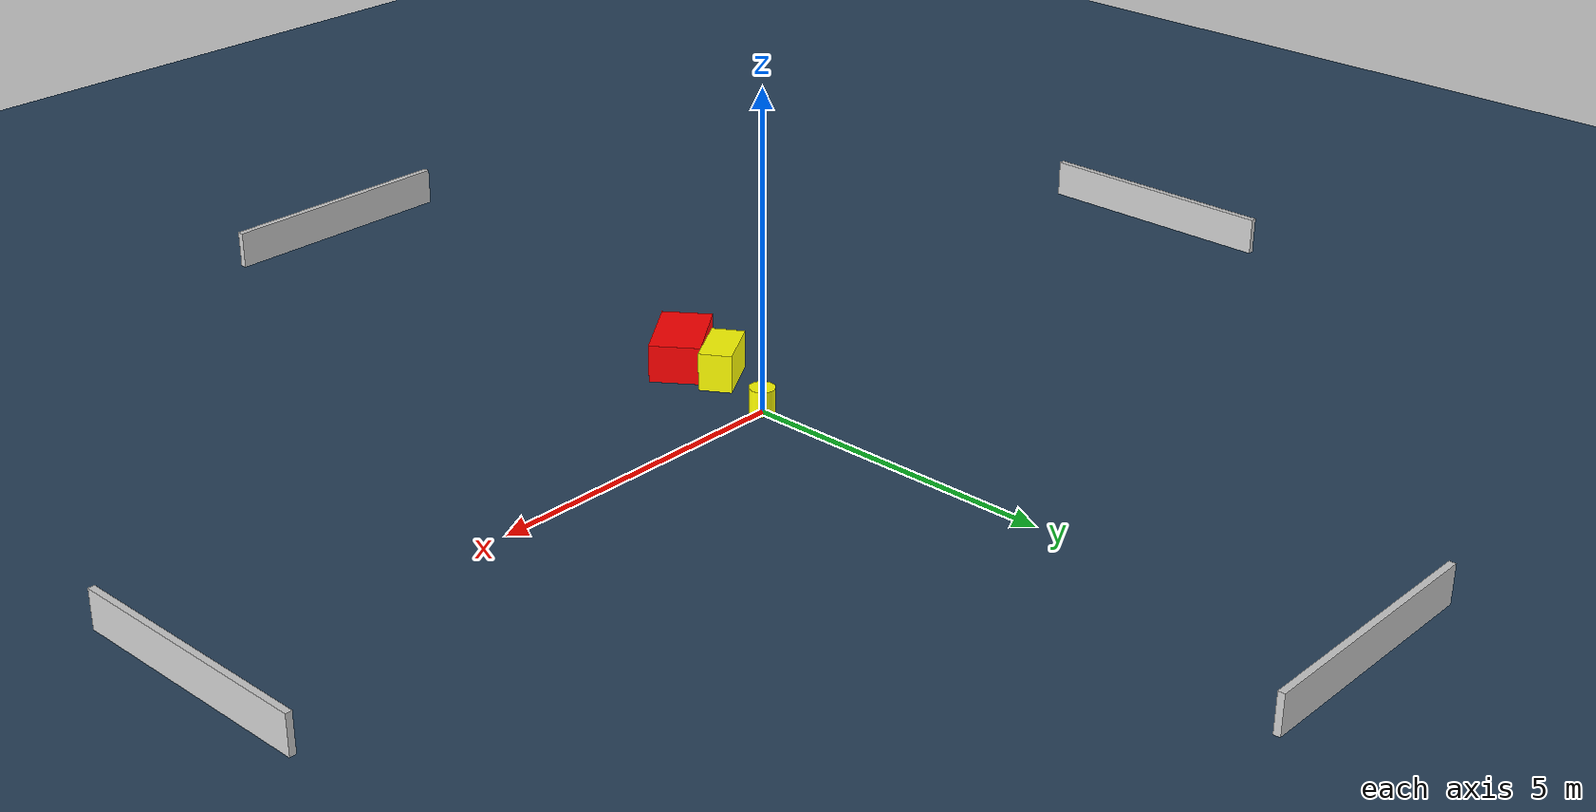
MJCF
<?xml version="1.0" ?>
<mujoco model="generated_environment">
  <option timestep="0.01" integrator="RK4" cone="elliptic"/>
  <default>
    <geom density="1"/>
  </default>
  <asset>
    <texture builtin="gradient" height="3072" name="skybox" rgb1="0.3 0.5 0.7" rgb2="0 0 0" type="skybox" width="512"/>
    <texture builtin="checker" height="300" name="groundplane" rgb1="0.2 0.3 0.4" rgb2="0.1 0.2 0.3" type="2d" width="300"/>
    <material name="groundplane" reflectance="0.2" texrepeat="5 5" texture="groundplane"/>
  </asset>
  <worldbody>
    <light dir="0 0 -1" directional="true" pos="0 0 1.5"/>
    <geom condim="3" friction="0.5 0.005 0.001" material="groundplane" name="floor" pos="0 0 0" size="0 0 0.05" type="plane"/>
    <body name="walls">
      <geom name="wall_1" condim="4" pos="-10.0 0.0 0.3" rgba="0.800000011920929 0.800000011920929 0.800000011920929 1.0" size="0.05 2.0 0.3" type="box"/>
      <geom name="wall_2" condim="4" pos="10.0 0.0 0.3" rgba="0.800000011920929 0.800000011920929 0.800000011920929 1.0" size="0.05 2.0 0.3" type="box"/>
      <geom name="wall_3" condim="4" pos="0.0 -10.0 0.3" rgba="0.800000011920929 0.800000011920929 0.800000011920929 1.0" size="2.0 0.05 0.3" type="box"/>
      <geom name="wall_4" condim="4" pos="0.0 10.0 0.3" rgba="0.800000011920929 0.800000011920929 0.800000011920929 1.0" size="2.0 0.05 0.3" type="box"/>
    </body>
    <body name="robot">
      <joint name="joint_x" type="slide" pos="0 0 0" axis="1 0 0"/>
      <joint name="joint_y" type="slide" pos="0 0 0" axis="0 1 0"/>
      <geom name="robot" type="cylinder" pos="0.0 0.0 0.2" size="0.2 0.2 0.0" mass="5.0" friction="1.0 0.005 0.0001" condim="4" rgba="1.0 1.0 0.0 1.0"/>
    </body>
    <body name="obstacle_1_movable">
      <geom name="obstacle_1_movable" condim="4" pos="-0.39743507614790224 -1.2033771796984505 0.3" euler="0 0 121.18075085124197" friction="0.0 0.005 0.001" rgba="1.0 1.0 0.0 1.0" size="0.257388267027188 0.46344021668759744 0.3" type="box" mass="0.1"/>
      <joint type="free"/>
    </body>
    <body name="obstacle_2_static">
      <geom name="obstacle_2_static" condim="4" pos="-0.29901093061330997 -1.9675464011186394 0.3" euler="0 0 305.6732779250553" friction="0.0 0.005 0.001" rgba="1.0 0.0 0.0 1.0" size="0.39593450894737414 0.6275765828173123 0.3" type="box"/>
    </body>
  </worldbody>
  <actuator>
    <motor name="actuator_x" joint="joint_x" gear="1" ctrlrange="-1 1"/>
    <motor name="actuator_y" joint="joint_y" gear="1" ctrlrange="-1 1"/>
  </actuator>
</mujoco>
